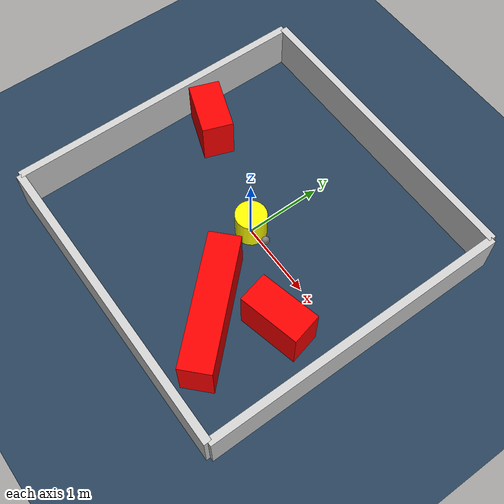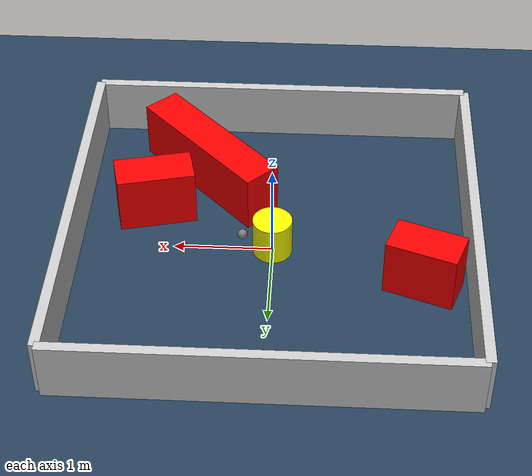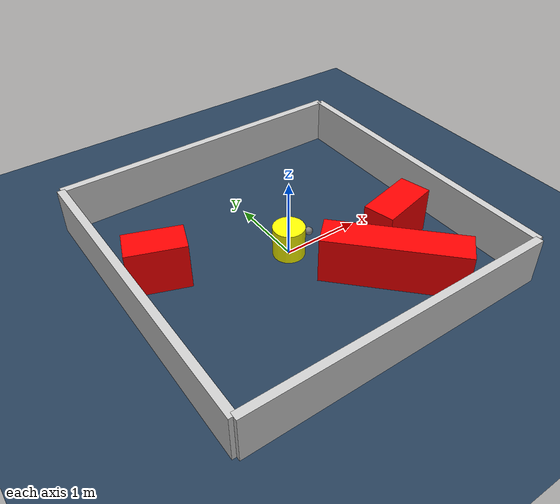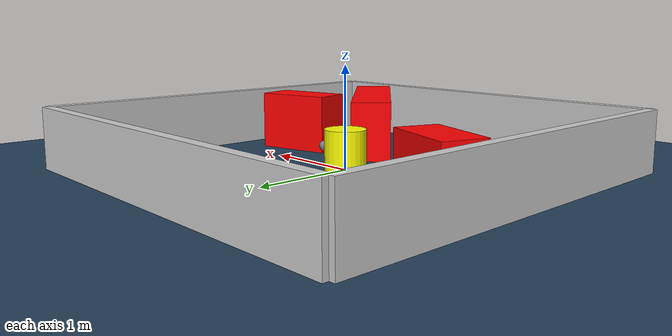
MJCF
<?xml version="1.0" ?>
<mujoco model="generated_environment">
  <option timestep="0.01" integrator="RK4" cone="elliptic"/>
  <default>
    <geom density="1"/>
  </default>
  <asset>
    <texture builtin="gradient" height="3072" rgb1="0.3 0.5 0.7" rgb2="0 0 0" type="skybox" width="512"/>
    <texture builtin="checker" height="300" mark="edge" markrgb="0.8 0.8 0.8" name="groundplane" rgb1="0.2 0.3 0.4" rgb2="0.1 0.2 0.3" type="2d" width="300"/>
    <material name="groundplane" reflectance="0.2" texrepeat="5 5" texture="groundplane" texuniform="true"/>
    <material name="robot" rgba="0.0 1.0 0.0 1"/>
  </asset>
  <worldbody>
    <light dir="0 0 -1" directional="true" pos="0 0 1.5"/>
    <geom condim="4" friction="1.0 0.005 0.001" material="groundplane" name="floor" size="0 0 0.05" type="plane"/>
    <body name="walls">
      <geom name="wall_1" condim="4" pos="-2.0 0.0 0.3" rgba="0.800000011920929 0.800000011920929 0.800000011920929 1.0" size="0.05 2.0 0.3" type="box"/>
      <geom name="wall_2" condim="4" pos="2.0 0.0 0.3" rgba="0.800000011920929 0.800000011920929 0.800000011920929 1.0" size="0.05 2.0 0.3" type="box"/>
      <geom name="wall_3" condim="4" pos="0.0 -2.0 0.3" rgba="0.800000011920929 0.800000011920929 0.800000011920929 1.0" size="2.0 0.05 0.3" type="box"/>
      <geom name="wall_4" condim="4" pos="0.0 2.0 0.3" rgba="0.800000011920929 0.800000011920929 0.800000011920929 1.0" size="2.0 0.05 0.3" type="box"/>
    </body>
    <body name="robot">
      <joint name="joint_x" type="slide" pos="0 0 0" axis="1 0 0"/>
      <joint name="joint_y" type="slide" pos="0 0 0" axis="0 1 0"/>
      <geom name="robot" type="sphere" pos="0.3 0.0 0.2" size="0.05" mass="5." friction="1.0 0.005 0.0001" condim="4" rgba="0.5 0.5 0.5 1.0"/>
      <site name="sensor_ball"/>
    </body>
    <body name="obstacle_movable_1">
      <geom name="obstacle_movable_1" condim="4" pos="0.0 0.0 0.2" euler="0 0 0.0" friction="1.0 0.005 0.001" rgba="1.0 1.0 0.0 1.0" size="0.2 0.2 0.0" type="cylinder" mass="0.1"/>
      <joint type="free"/>
    </body>
    <body name="obstacle_2_static">
      <geom name="obstacle_2_static" condim="4" pos="-1.506266331935046 0.4631576560853039 0.3" euler="0 0 340.0647007932914" friction="1.0 0.005 0.001" rgba="1 0 0 1" size="0.3561096690077249 0.2 0.3" type="box"/>
    </body>
    <body name="obstacle_3_static">
      <geom name="obstacle_3_static" condim="4" pos="0.7121535859828827 -1.0774154250167625 0.3" euler="0 0 313.6915481727789" friction="1.0 0.005 0.001" rgba="1 0 0 1" size="0.8518735532871684 0.2 0.3" type="box"/>
    </body>
    <body name="obstacle_4_static">
      <geom name="obstacle_4_static" condim="4" pos="1.2382600393032965 -0.5145760297583448 0.3" euler="0 0 193.31805616206364" friction="1.0 0.005 0.001" rgba="1 0 0 1" size="0.3962571934110346 0.2 0.3" type="box"/>
    </body>
  </worldbody>
  <actuator>
    <motor name="actuator_x" joint="joint_x" gear="1" ctrlrange="-1 1"/>
    <motor name="actuator_y" joint="joint_y" gear="1" ctrlrange="-1 1"/>
  </actuator>
</mujoco>
